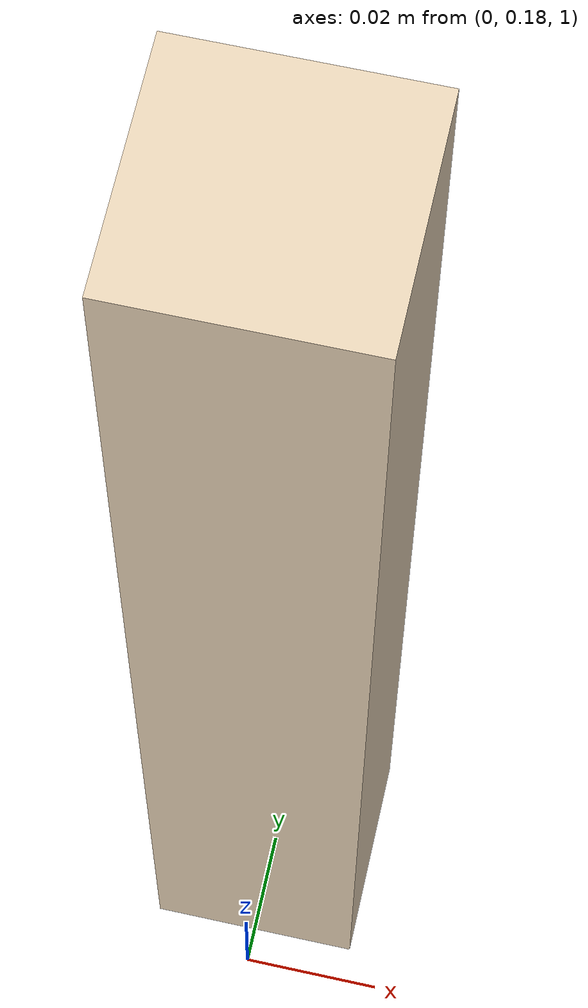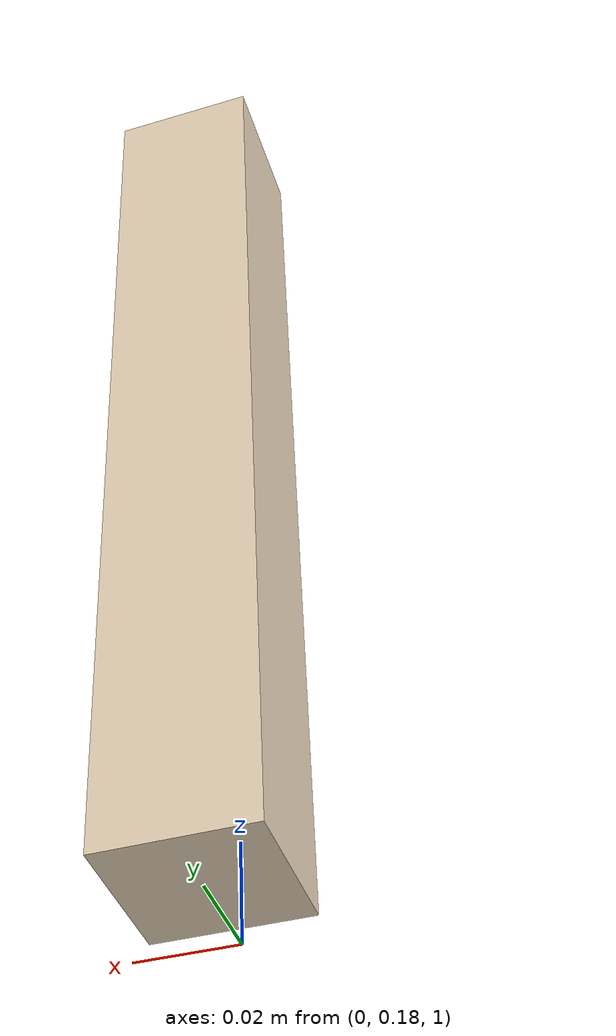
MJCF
<mujoco>
  <worldbody>
    <body name="cushion" pos=".0 0.2 1.1" quat="1 0 0 0">
      <joint name="cushion_joint" type="free" frictionloss="0.001" />
      <geom condim="4" solimp="0.9 0.95 0.001" solref="0.02 1" friction="2 0.1 0.001" pos="0 0 0"  name="cushion" type="box" size=".015 .015 .1"  rgba="0.91764706 0.83921569 0.72941176 1"/>
      <inertial pos="0 0 0" mass="0.01" diaginertia="0.002 0.002 0.002" />
  </body>
  </worldbody>
</mujoco>
